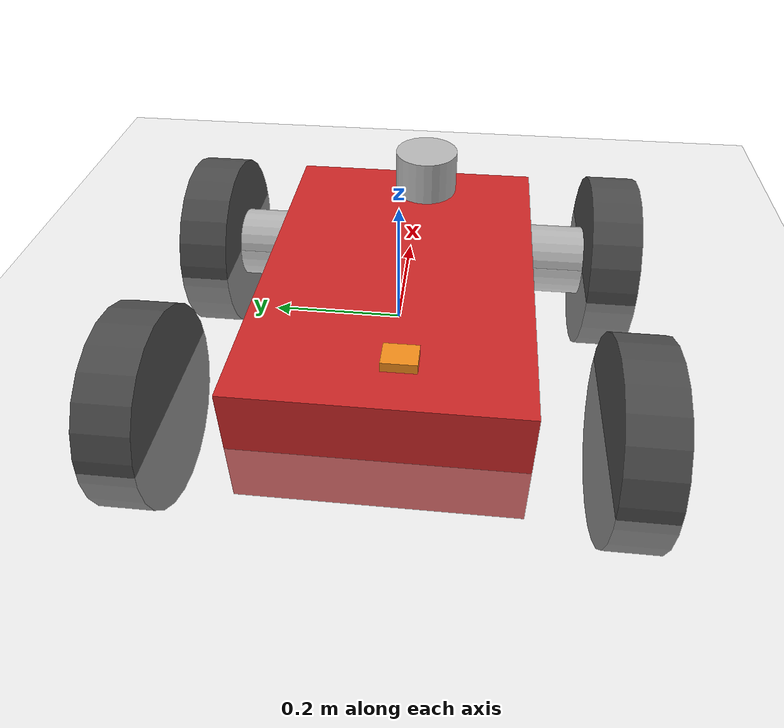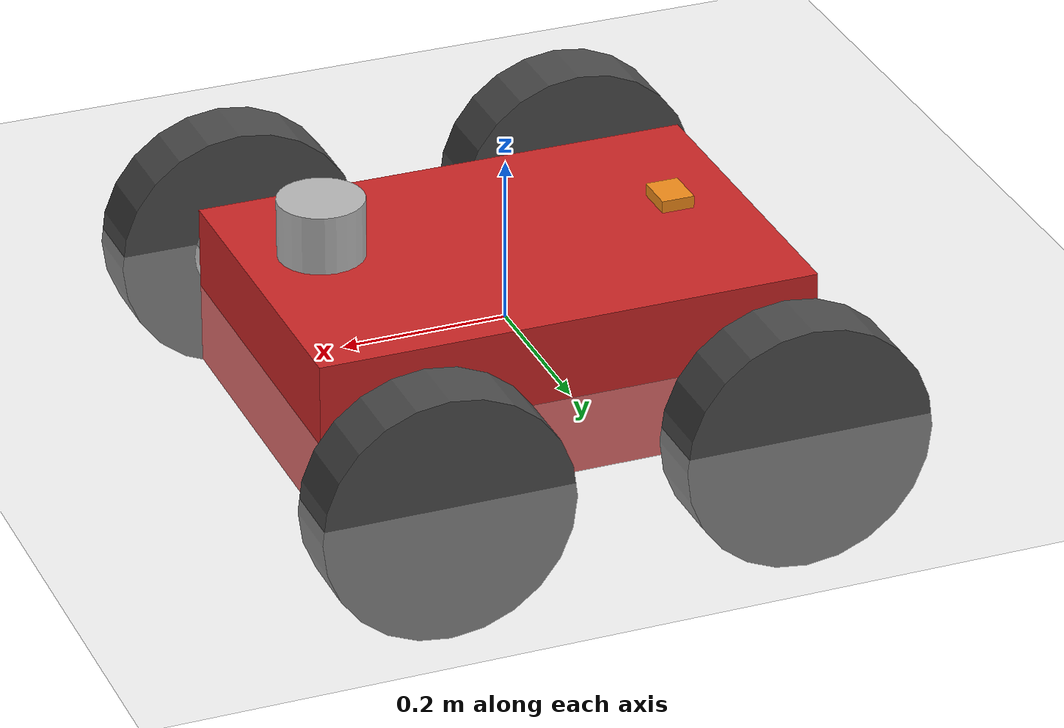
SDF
<?xml version="1.0" ?>
<sdf version='1.9'>
  <world name='empty'>
    <physics name='1ms' type='ignored'>
      <max_step_size>0.001</max_step_size>
      <real_time_factor>1</real_time_factor>
      <real_time_update_rate>1000</real_time_update_rate>
    </physics>
    <plugin name='gz::sim::systems::Physics' filename='ignition-gazebo-physics-system'/>
    <plugin name='gz::sim::systems::UserCommands' filename='ignition-gazebo-user-commands-system'/>
    <plugin name='gz::sim::systems::SceneBroadcaster' filename='ignition-gazebo-scene-broadcaster-system'/>
    <plugin name='gz::sim::systems::Contact' filename='ignition-gazebo-contact-system'/>
    <gravity>0 0 -9.8</gravity>
    <magnetic_field>6e-06 2.3e-05 -4.2e-05</magnetic_field>
    <atmosphere type='adiabatic'/>
    <scene>
      <ambient>0.4 0.4 0.4 1</ambient>
      <background>0.7 0.7 0.7 1</background>
      <shadows>true</shadows>
    </scene>
    <model name='ground_plane'>
      <static>true</static>
      <link name='link'>
        <collision name='collision'>
          <geometry>
            <plane>
              <normal>0 0 1</normal>
              <size>100 100</size>
            </plane>
          </geometry>
          <surface>
            <friction>
              <ode/>
            </friction>
            <bounce/>
            <contact/>
          </surface>
        </collision>
        <visual name='visual'>
          <geometry>
            <plane>
              <normal>0 0 1</normal>
              <size>100 100</size>
            </plane>
          </geometry>
          <material>
            <ambient>0.8 0.8 0.8 1</ambient>
            <diffuse>0.8 0.8 0.8 1</diffuse>
            <specular>0.8 0.8 0.8 1</specular>
          </material>
        </visual>
        <pose>0 0 0 0 -0 0</pose>
        <inertial>
          <pose>0 0 0 0 -0 0</pose>
          <mass>1</mass>
          <inertia>
            <ixx>1</ixx>
            <ixy>0</ixy>
            <ixz>0</ixz>
            <iyy>1</iyy>
            <iyz>0</iyz>
            <izz>1</izz>
          </inertia>
        </inertial>
        <enable_wind>false</enable_wind>
      </link>
      <pose>0 0 0 0 -0 0</pose>
      <self_collide>false</self_collide>
    </model>
    <model name='arv'>
      <link name='base_link'>
        <inertial>
          <pose>0 0 0 0 -0 0</pose>
          <mass>40</mass>
          <inertia>
            <ixx>0.689697</ixx>
            <ixy>0</ixy>
            <ixz>0</ixz>
            <iyy>1.34945</iyy>
            <iyz>0</iyz>
            <izz>1.34945</izz>
          </inertia>
        </inertial>
        <collision name='base_link_collision'>
          <pose>0 0 0 0 0 0</pose>
          <geometry>
            <box>
              <size>0.605 0.41 0.197</size>
            </box>
          </geometry>
          <surface>
            <contact>
              <ode/>
            </contact>
            <friction>
              <ode/>
            </friction>
            <bounce/>
          </surface>
        </collision>
        <visual name='base_link_visual'>
          <pose>0 0 0 0 0 0</pose>
          <geometry>
            <box>
              <size>0.605 0.41 0.197</size>
            </box>
          </geometry>
          <material>
            <script>
              <name>Gazebo/Red</name>
              <uri>file://media/materials/scripts/gazebo.material</uri>
            </script>
            <diffuse>1 0 0.125 1</diffuse>
            <ambient>1 0 0.125 1</ambient>
          </material>
        </visual>
        <pose>0 0 0 0 -0 0</pose>
        <enable_wind>false</enable_wind>
      </link>
      <joint name='LEFT_HINGE_JOINT' type='revolute'>
        <pose>0 0 0 0 -0 0</pose>
        <parent>base_link</parent>
        <child>LEFT_HINGE</child>
        <axis>
          <xyz>0 1 0</xyz>
          <limit>
            <lower>-1</lower>
            <upper>1</upper>
            <effort>100</effort>
            <velocity>1</velocity>
            <stiffness>100000000</stiffness>
            <dissipation>1</dissipation>
          </limit>
          <dynamics>
            <spring_reference>0</spring_reference>
            <spring_stiffness>0</spring_stiffness>
            <damping>0</damping>
            <friction>0</friction>
          </dynamics>
        </axis>
      </joint>
      <link name='LEFT_HINGE'>
        <pose>0.2159 0.255 -0.0185 -1.5708 0 0</pose>
        <inertial>
          <pose>0 0 0 0 -0 0</pose>
          <mass>0.20000000000000001</mass>
          <inertia>
            <ixx>0.00034666699999999999</ixx>
            <ixy>0</ixy>
            <ixz>0</ixz>
            <iyy>0.00034666699999999999</iyy>
            <iyz>0</iyz>
            <izz>0.00036000000000000002</izz>
          </inertia>
        </inertial>
        <visual name='LEFT_HINGE_visual'>
          <pose>0 0 0 0 0 0</pose>
          <geometry>
            <cylinder>
              <length>0.10000000000000001</length>
              <radius>0.059999999999999998</radius>
            </cylinder>
          </geometry>
        </visual>
        <enable_wind>false</enable_wind>
      </link>
      <joint name='LEFT_FRONT_WHEEL_JOINT' type='revolute'>
        <pose>0 0 0 0 -0 0</pose>
        <parent>LEFT_HINGE</parent>
        <child>LEFT_FRONT_WHEEL</child>
        <axis>
          <xyz>0 1 0</xyz>
          <limit>
            <lower>-10000000000000000</lower>
            <upper>10000000000000000</upper>
            <effort>1</effort>
            <velocity>1</velocity>
            <stiffness>100000000</stiffness>
            <dissipation>1</dissipation>
          </limit>
          <dynamics>
            <spring_reference>0</spring_reference>
            <spring_stiffness>0</spring_stiffness>
            <damping>1</damping>
            <friction>0</friction>
          </dynamics>
        </axis>
      </joint>
      <link name='LEFT_FRONT_WHEEL'>
        <pose>0.2159 0.345 -0.0185 -1.5708 0 0</pose>
        <inertial>
          <pose>0 0 0 0 -0 0</pose>
          <mass>5</mass>
          <inertia>
            <ixx>0.030791700000000002</ixx>
            <ixy>0</ixy>
            <ixz>0</ixz>
            <iyy>0.030791700000000002</iyy>
            <iyz>0</iyz>
            <izz>0.056250000000000001</izz>
          </inertia>
        </inertial>
        <collision name='LEFT_FRONT_WHEEL_collision'>
          <pose>0 0 0 0 0 0</pose>
          <geometry>
            <cylinder>
              <length>0.080000000000000002</length>
              <radius>0.14999999999999999</radius>
            </cylinder>
          </geometry>
          <surface>
            <contact>
              <ode>
                <kp>10000000</kp>
                <kd>1</kd>
                <max_vel>100</max_vel>
                <min_depth>0.0050000000000000001</min_depth>
              </ode>
            </contact>
            <friction>
              <ode>
                <mu>0.5</mu>
                <mu2>0.5</mu2>
                <fdir1>1 0 0</fdir1>
              </ode>
            </friction>
            <bounce/>
          </surface>
        </collision>
        <visual name='LEFT_FRONT_WHEEL_visual'>
          <pose>0 0 0 0 0 0</pose>
          <geometry>
            <cylinder>
              <length>0.080000000000000002</length>
              <radius>0.14999999999999999</radius>
            </cylinder>
          </geometry>
          <material>
            <script>
              <name>Gazebo/DarkGrey</name>
              <uri>file://media/materials/scripts/gazebo.material</uri>
            </script>
          </material>
        </visual>
        <enable_wind>false</enable_wind>
      </link>
      <joint name='LEFT_REAR_WHEEL_JOINT' type='revolute'>
        <pose>0 0 0 0 -0 0</pose>
        <parent>base_link</parent>
        <child>LEFT_REAR_WHEEL</child>
        <axis>
          <xyz>0 0 1</xyz>
          <limit>
            <lower>-10000000000000000</lower>
            <upper>10000000000000000</upper>
            <effort>1</effort>
            <velocity>1</velocity>
            <stiffness>100000000</stiffness>
            <dissipation>1</dissipation>
          </limit>
          <dynamics>
            <spring_reference>0</spring_reference>
            <spring_stiffness>0</spring_stiffness>
            <damping>1</damping>
            <friction>0</friction>
          </dynamics>
        </axis>
      </joint>
      <link name='LEFT_REAR_WHEEL'>
        <pose>-0.2159 0.345 -0.0185 1.5708 -0 0</pose>
        <inertial>
          <pose>0 0 0 0 -0 0</pose>
          <mass>5</mass>
          <inertia>
            <ixx>0.030791700000000002</ixx>
            <ixy>0</ixy>
            <ixz>0</ixz>
            <iyy>0.030791700000000002</iyy>
            <iyz>0</iyz>
            <izz>0.056250000000000001</izz>
          </inertia>
        </inertial>
        <collision name='LEFT_REAR_WHEEL_collision'>
          <pose>0 0 0 0 0 0</pose>
          <geometry>
            <cylinder>
              <length>0.080000000000000002</length>
              <radius>0.14999999999999999</radius>
            </cylinder>
          </geometry>
          <surface>
            <contact>
              <ode>
                <kp>10000000</kp>
                <kd>1</kd>
                <max_vel>100</max_vel>
                <min_depth>0.0050000000000000001</min_depth>
              </ode>
            </contact>
            <friction>
              <ode>
                <mu>0</mu>
                <mu2>0</mu2>
                <fdir1>1 0 0</fdir1>
              </ode>
            </friction>
            <bounce/>
          </surface>
        </collision>
        <visual name='LEFT_REAR_WHEEL_visual'>
          <pose>0 0 0 0 0 0</pose>
          <geometry>
            <cylinder>
              <length>0.080000000000000002</length>
              <radius>0.14999999999999999</radius>
            </cylinder>
          </geometry>
          <material>
            <script>
              <name>Gazebo/DarkGrey</name>
              <uri>file://media/materials/scripts/gazebo.material</uri>
            </script>
          </material>
        </visual>
        <enable_wind>false</enable_wind>
      </link>
      <joint name='RIGHT_HINGE_JOINT' type='revolute'>
        <pose>0 -0 0 0 -0 0</pose>
        <parent>base_link</parent>
        <child>RIGHT_HINGE</child>
        <axis>
          <xyz>0 1 0</xyz>
          <limit>
            <lower>-1</lower>
            <upper>1</upper>
            <effort>100</effort>
            <velocity>1</velocity>
            <stiffness>100000000</stiffness>
            <dissipation>1</dissipation>
          </limit>
          <dynamics>
            <spring_reference>0</spring_reference>
            <spring_stiffness>0</spring_stiffness>
            <damping>0</damping>
            <friction>0</friction>
          </dynamics>
        </axis>
      </joint>
      <link name='RIGHT_HINGE'>
        <pose>0.2159 -0.255 -0.0185 -1.5708 0 0</pose>
        <inertial>
          <pose>0 0 0 0 -0 0</pose>
          <mass>0.20000000000000001</mass>
          <inertia>
            <ixx>0.00034666699999999999</ixx>
            <ixy>0</ixy>
            <ixz>0</ixz>
            <iyy>0.00034666699999999999</iyy>
            <iyz>0</iyz>
            <izz>0.00036000000000000002</izz>
          </inertia>
        </inertial>
        <visual name='RIGHT_HINGE_visual'>
          <pose>0 0 0 0 0 0</pose>
          <geometry>
            <cylinder>
              <length>0.10000000000000001</length>
              <radius>0.059999999999999998</radius>
            </cylinder>
          </geometry>
        </visual>
        <enable_wind>false</enable_wind>
      </link>
      <joint name='RIGHT_FRONT_WHEEL_JOINT' type='revolute'>
        <pose>0 0 0 0 -0 0</pose>
        <parent>RIGHT_HINGE</parent>
        <child>RIGHT_FRONT_WHEEL</child>
        <axis>
          <xyz>0 1 0</xyz>
          <limit>
            <lower>-10000000000000000</lower>
            <upper>10000000000000000</upper>
            <effort>1</effort>
            <velocity>1</velocity>
            <stiffness>100000000</stiffness>
            <dissipation>1</dissipation>
          </limit>
          <dynamics>
            <spring_reference>0</spring_reference>
            <spring_stiffness>0</spring_stiffness>
            <damping>1</damping>
            <friction>0</friction>
          </dynamics>
        </axis>
      </joint>
      <link name='RIGHT_FRONT_WHEEL'>
        <pose>0.2159 -0.345 -0.0185 -1.5708 0 0</pose>
        <inertial>
          <pose>0 0 0 0 -0 0</pose>
          <mass>5</mass>
          <inertia>
            <ixx>0.030791700000000002</ixx>
            <ixy>0</ixy>
            <ixz>0</ixz>
            <iyy>0.030791700000000002</iyy>
            <iyz>0</iyz>
            <izz>0.056250000000000001</izz>
          </inertia>
        </inertial>
        <collision name='RIGHT_FRONT_WHEEL_collision'>
          <pose>0 0 0 0 0 0</pose>
          <geometry>
            <cylinder>
              <length>0.080000000000000002</length>
              <radius>0.14999999999999999</radius>
            </cylinder>
          </geometry>
          <surface>
            <contact>
              <ode>
                <kp>10000000</kp>
                <kd>1</kd>
                <max_vel>100</max_vel>
                <min_depth>0.0050000000000000001</min_depth>
              </ode>
            </contact>
            <friction>
              <ode>
                <mu>0.5</mu>
                <mu2>0.5</mu2>
                <fdir1>1 0 0</fdir1>
              </ode>
            </friction>
            <bounce/>
          </surface>
        </collision>
        <visual name='RIGHT_FRONT_WHEEL_visual'>
          <pose>0 0 0 0 0 0</pose>
          <geometry>
            <cylinder>
              <length>0.080000000000000002</length>
              <radius>0.14999999999999999</radius>
            </cylinder>
          </geometry>
          <material>
            <script>
              <name>Gazebo/DarkGrey</name>
              <uri>file://media/materials/scripts/gazebo.material</uri>
            </script>
          </material>
        </visual>
        <enable_wind>false</enable_wind>
      </link>
      <joint name='RIGHT_REAR_WHEEL_JOINT' type='revolute'>
        <pose>0 0 0 0 -0 0</pose>
        <parent>base_link</parent>
        <child>RIGHT_REAR_WHEEL</child>
        <axis>
          <xyz>0 0 1</xyz>
          <limit>
            <lower>-10000000000000000</lower>
            <upper>10000000000000000</upper>
            <effort>1</effort>
            <velocity>1</velocity>
            <stiffness>100000000</stiffness>
            <dissipation>1</dissipation>
          </limit>
          <dynamics>
            <spring_reference>0</spring_reference>
            <spring_stiffness>0</spring_stiffness>
            <damping>1</damping>
            <friction>0</friction>
          </dynamics>
        </axis>
      </joint>
      <link name='RIGHT_REAR_WHEEL'>
        <pose>-0.2159 -0.345 -0.0185 1.5708 -0 0</pose>
        <inertial>
          <pose>0 0 0 0 -0 0</pose>
          <mass>5</mass>
          <inertia>
            <ixx>0.030791700000000002</ixx>
            <ixy>0</ixy>
            <ixz>0</ixz>
            <iyy>0.030791700000000002</iyy>
            <iyz>0</iyz>
            <izz>0.056250000000000001</izz>
          </inertia>
        </inertial>
        <collision name='RIGHT_REAR_WHEEL_collision'>
          <pose>0 0 0 0 0 0</pose>
          <geometry>
            <cylinder>
              <length>0.080000000000000002</length>
              <radius>0.14999999999999999</radius>
            </cylinder>
          </geometry>
          <surface>
            <contact>
              <ode>
                <kp>10000000</kp>
                <kd>1</kd>
                <max_vel>100</max_vel>
                <min_depth>0.0050000000000000001</min_depth>
              </ode>
            </contact>
            <friction>
              <ode>
                <mu>0</mu>
                <mu2>0</mu2>
                <fdir1>1 0 0</fdir1>
              </ode>
            </friction>
            <bounce/>
          </surface>
        </collision>
        <visual name='RIGHT_REAR_WHEEL_visual'>
          <pose>0 0 0 0 0 0</pose>
          <geometry>
            <cylinder>
              <length>0.080000000000000002</length>
              <radius>0.14999999999999999</radius>
            </cylinder>
          </geometry>
          <material>
            <script>
              <name>Gazebo/DarkGrey</name>
              <uri>file://media/materials/scripts/gazebo.material</uri>
            </script>
          </material>
        </visual>
        <enable_wind>false</enable_wind>
      </link>
      <joint name='imu_joint' type='fixed'>
        <pose>0 0 0 0 -0 0</pose>
        <parent>base_link</parent>
        <child>imu_link</child>
        <axis>
          <xyz>0 0 1</xyz>
          <limit>
            <lower>-10000000000000000</lower>
            <upper>10000000000000000</upper>
            <effort>inf</effort>
            <velocity>inf</velocity>
            <stiffness>100000000</stiffness>
            <dissipation>1</dissipation>
          </limit>
          <dynamics>
            <spring_reference>0</spring_reference>
            <spring_stiffness>0</spring_stiffness>
            <damping>0</damping>
            <friction>0</friction>
          </dynamics>
        </axis>
        <physics>
          <ode>
            <limit>
              <cfm>0</cfm>
              <erp>0.20000000000000001</erp>
            </limit>
          </ode>
        </physics>
      </joint>
      <link name='imu_link'>
        <pose>-0.2159 -0.02397 0.1035 0 -0 0</pose>
        <inertial>
          <pose>0 0 0 0 -0 0</pose>
          <mass>0.001</mass>
          <inertia>
            <ixx>0.0001</ixx>
            <ixy>0</ixy>
            <ixz>0</ixz>
            <iyy>9.9999999999999995e-07</iyy>
            <iyz>0</iyz>
            <izz>0.0001</izz>
          </inertia>
        </inertial>
        <collision name='imu_link_collision'>
          <pose>0 0 0 0 0 0</pose>
          <geometry>
            <box>
              <size>0.001 0.001 0.001</size>
            </box>
          </geometry>
          <surface>
            <contact>
              <ode/>
            </contact>
            <friction>
              <ode/>
            </friction>
            <bounce/>
          </surface>
        </collision>
        <visual name='imu_link_visual'>
          <pose>0 0 0 0 0 0</pose>
          <geometry>
            <box>
              <size>0.04 0.05 0.02</size>
            </box>
          </geometry>
          <material>
            <script>
              <name>Gazebo/Orange</name>
              <uri>file://media/materials/scripts/gazebo.material</uri>
            </script>
          </material>
        </visual>
        <sensor name='imu_sensor' type='imu'>
          <pose>0 0 0 0 -0 0</pose>
          <topic>/arv/imu</topic>
          <update_rate>400</update_rate>
          <enable_metrics>false</enable_metrics>
          <imu>
            <orientation_reference_frame>
              <localization>CUSTOM</localization>
              <custom_rpy>0 0 0</custom_rpy>
              <grav_dir_x>1 0 0</grav_dir_x>
            </orientation_reference_frame>
            <angular_velocity>
              <x>
                <noise type='none'>
                  <mean>0</mean>
                  <stddev>0</stddev>
                  <bias_mean>0</bias_mean>
                  <bias_stddev>0</bias_stddev>
                  <dynamic_bias_stddev>0</dynamic_bias_stddev>
                  <dynamic_bias_correlation_time>0</dynamic_bias_correlation_time>
                  <precision>0</precision>
                </noise>
              </x>
              <y>
                <noise type='none'>
                  <mean>0</mean>
                  <stddev>0</stddev>
                  <bias_mean>0</bias_mean>
                  <bias_stddev>0</bias_stddev>
                  <dynamic_bias_stddev>0</dynamic_bias_stddev>
                  <dynamic_bias_correlation_time>0</dynamic_bias_correlation_time>
                  <precision>0</precision>
                </noise>
              </y>
              <z>
                <noise type='none'>
                  <mean>0</mean>
                  <stddev>0</stddev>
                  <bias_mean>0</bias_mean>
                  <bias_stddev>0</bias_stddev>
                  <dynamic_bias_stddev>0</dynamic_bias_stddev>
                  <dynamic_bias_correlation_time>0</dynamic_bias_correlation_time>
                  <precision>0</precision>
                </noise>
              </z>
            </angular_velocity>
            <linear_acceleration>
              <x>
                <noise type='none'>
                  <mean>0</mean>
                  <stddev>0</stddev>
                  <bias_mean>0</bias_mean>
                  <bias_stddev>0</bias_stddev>
                  <dynamic_bias_stddev>0</dynamic_bias_stddev>
                  <dynamic_bias_correlation_time>0</dynamic_bias_correlation_time>
                  <precision>0</precision>
                </noise>
              </x>
              <y>
                <noise type='none'>
                  <mean>0</mean>
                  <stddev>0</stddev>
                  <bias_mean>0</bias_mean>
                  <bias_stddev>0</bias_stddev>
                  <dynamic_bias_stddev>0</dynamic_bias_stddev>
                  <dynamic_bias_correlation_time>0</dynamic_bias_correlation_time>
                  <precision>0</precision>
                </noise>
              </y>
              <z>
                <noise type='none'>
                  <mean>0</mean>
                  <stddev>0</stddev>
                  <bias_mean>0</bias_mean>
                  <bias_stddev>0</bias_stddev>
                  <dynamic_bias_stddev>0</dynamic_bias_stddev>
                  <dynamic_bias_correlation_time>0</dynamic_bias_correlation_time>
                  <precision>0</precision>
                </noise>
              </z>
            </linear_acceleration>
            <enable_orientation>true</enable_orientation>
          </imu>
        </sensor>
        <enable_wind>false</enable_wind>
      </link>
      <joint name='lidar_joint' type='fixed'>
        <pose>0 0 0 0 -0 0</pose>
        <parent>base_link</parent>
        <child>lidar_link</child>
        <axis>
          <xyz>0 0 1</xyz>
          <limit>
            <lower>-10000000000000000</lower>
            <upper>10000000000000000</upper>
            <effort>inf</effort>
            <velocity>inf</velocity>
            <stiffness>100000000</stiffness>
            <dissipation>1</dissipation>
          </limit>
          <dynamics>
            <spring_reference>0</spring_reference>
            <spring_stiffness>0</spring_stiffness>
            <damping>0</damping>
            <friction>0</friction>
          </dynamics>
        </axis>
        <physics>
          <ode>
            <limit>
              <cfm>0</cfm>
              <erp>0.20000000000000001</erp>
            </limit>
          </ode>
        </physics>
      </joint>
      <link name='lidar_link'>
        <pose>0.2159 -0.02397 0.1485 0 -0 0</pose>
        <inertial>
          <pose>0 0 0 0 -0 0</pose>
          <mass>0.14999999999999999</mass>
          <inertia>
            <ixx>0.00016410700000000001</ixx>
            <ixy>0</ixy>
            <ixz>0</ixz>
            <iyy>0.00016410700000000001</iyy>
            <iyz>0</iyz>
            <izz>0.00019969200000000001</izz>
          </inertia>
        </inertial>
        <collision name='lidar_link_collision'>
          <pose>0 0 0 0 0 0</pose>
          <geometry>
            <cylinder>
              <length>0.0717</length>
              <radius>0.0516</radius>
            </cylinder>
          </geometry>
          <surface>
            <contact>
              <ode/>
            </contact>
            <friction>
              <ode/>
            </friction>
            <bounce/>
          </surface>
        </collision>
        <visual name='lidar_link_visual'>
          <pose>0 0 0 0 0 0</pose>
          <geometry>
            <cylinder>
              <length>0.0717</length>
              <radius>0.0516</radius>
            </cylinder>
          </geometry>
        </visual>
        <sensor name='gpu_lidar' type='gpu_lidar'>
          <pose>0 0 0 0 -0 0</pose>
          <topic>/arv/scan</topic>
          <update_rate>400</update_rate>
          <enable_metrics>false</enable_metrics>
          <lidar>
            <scan>
              <horizontal>
                <samples>640</samples>
                <resolution>1</resolution>
                <min_angle>-1.3962600000000001</min_angle>
                <max_angle>1.3962600000000001</max_angle>
              </horizontal>
              <vertical>
                <samples>1</samples>
                <min_angle>0</min_angle>
                <max_angle>0</max_angle>
                <resolution>1</resolution>
              </vertical>
            </scan>
            <range>
              <min>0.080000000000000002</min>
              <max>10</max>
              <resolution>0.01</resolution>
            </range>
            <noise>
              <type>gaussian</type>
              <mean>0</mean>
              <stddev>0.001</stddev>
            </noise>
            <visibility_mask>4294967295</visibility_mask>
          </lidar>
        </sensor>
        <enable_wind>false</enable_wind>
      </link>
      <frame name='base_to_base_inertia' attached_to='base_link'>
        <pose>0 0 0 0 -0 0</pose>
      </frame>
      <frame name='base_inertia' attached_to='base_to_base_inertia'/>
      <pose>0 0 0 0 -0 0</pose>
      <static>false</static>
      <self_collide>false</self_collide>
    </model>
    <light name='sun' type='directional'>
      <pose>0 0 10 0 -0 0</pose>
      <cast_shadows>true</cast_shadows>
      <intensity>1</intensity>
      <direction>-0.5 0.1 -0.9</direction>
      <diffuse>0.8 0.8 0.8 1</diffuse>
      <specular>0.2 0.2 0.2 1</specular>
      <attenuation>
        <range>1000</range>
        <linear>0.01</linear>
        <constant>0.90000000000000002</constant>
        <quadratic>0.001</quadratic>
      </attenuation>
      <spot>
        <inner_angle>0</inner_angle>
        <outer_angle>0</outer_angle>
        <falloff>0</falloff>
      </spot>
    </light>
  </world>
</sdf>
